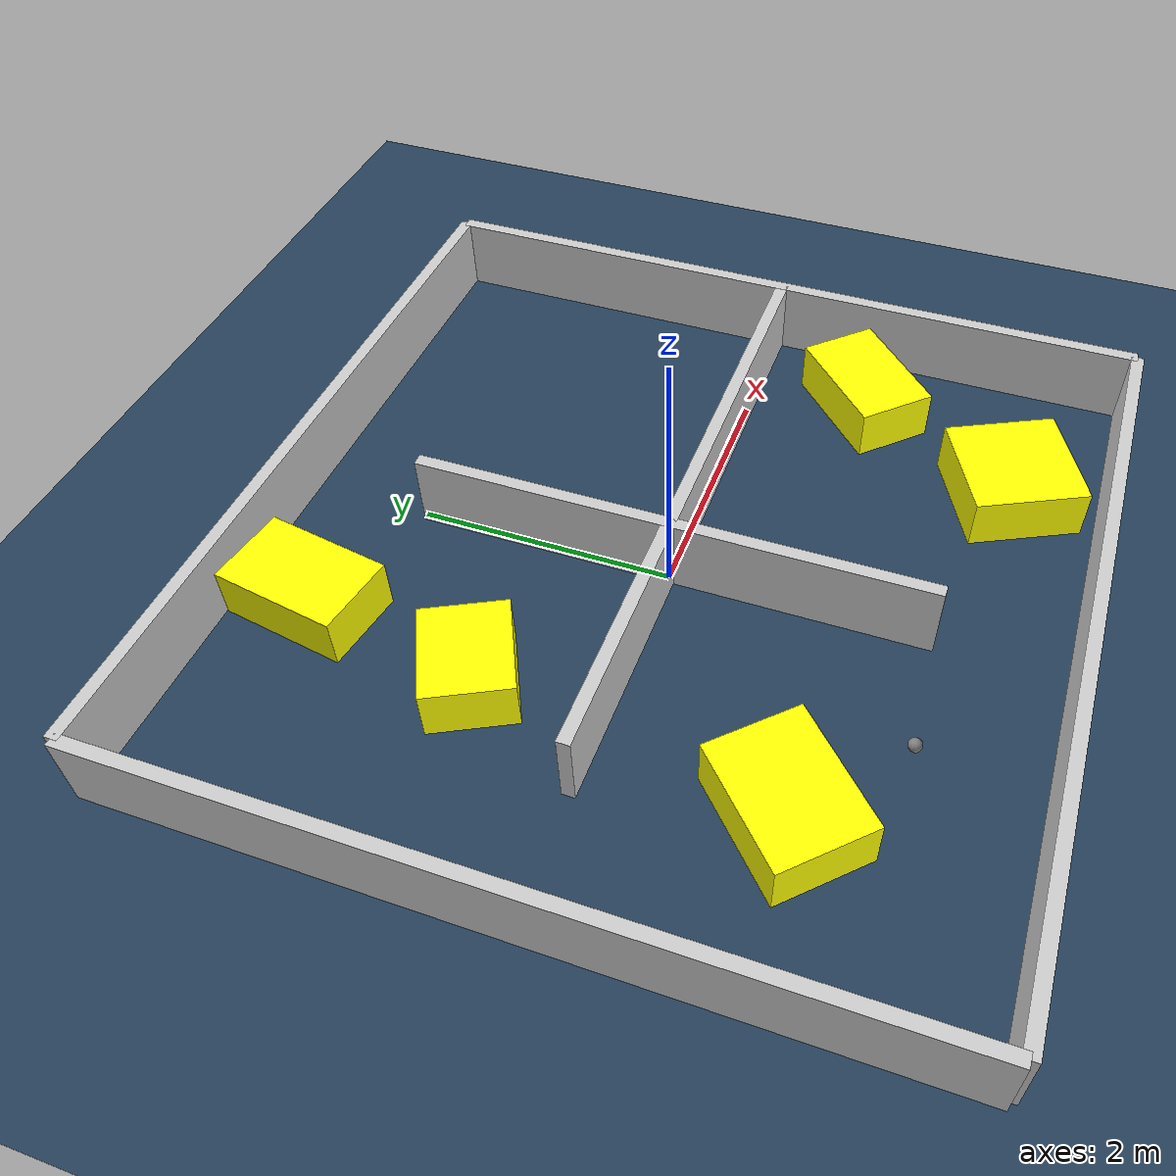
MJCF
<?xml version="1.0" ?>
<mujoco model="generated_environment">
  <option timestep="0.01" integrator="RK4" cone="elliptic"/>
  <default>
    <geom density="1"/>
  </default>
  <asset>
    <texture builtin="gradient" height="3072" rgb1="0.3 0.5 0.7" rgb2="0 0 0" type="skybox" width="512"/>
    <texture builtin="checker" height="300" mark="edge" markrgb="0.8 0.8 0.8" name="groundplane" rgb1="0.2 0.3 0.4" rgb2="0.1 0.2 0.3" type="2d" width="300"/>
    <material name="groundplane" reflectance="0.2" texrepeat="5 5" texture="groundplane" texuniform="true"/>
    <material name="robot" rgba="0.0 1.0 0.0 1"/>
  </asset>
  <worldbody>
    <light dir="0 0 -1" directional="true" pos="0 0 1.5"/>
    <geom condim="4" friction="1.0 0.005 0.001" material="groundplane" name="floor" size="0 0 0.05" type="plane"/>
    <body name="walls">
      <geom name="wall_1" condim="4" pos="-3.0 0.0 0.3" rgba="0.800000011920929 0.800000011920929 0.800000011920929 1.0" size="0.05 3.0 0.3" type="box"/>
      <geom name="wall_2" condim="4" pos="3.0 0.0 0.3" rgba="0.800000011920929 0.800000011920929 0.800000011920929 1.0" size="0.05 3.0 0.3" type="box"/>
      <geom name="wall_3" condim="4" pos="0.0 -3.0 0.3" rgba="0.800000011920929 0.800000011920929 0.800000011920929 1.0" size="3.0 0.05 0.3" type="box"/>
      <geom name="wall_4" condim="4" pos="0.0 3.0 0.3" rgba="0.800000011920929 0.800000011920929 0.800000011920929 1.0" size="3.0 0.05 0.3" type="box"/>
      <geom name="wall_5" condim="4" pos="1.5 0.0 0.3" rgba="0.800000011920929 0.800000011920929 0.800000011920929 1.0" size="1.5 0.05 0.3" type="box"/>
      <geom name="wall_6" condim="4" pos="-1.0 0.0 0.3" rgba="0.800000011920929 0.800000011920929 0.800000011920929 1.0" size="1.0 0.05 0.3" type="box"/>
      <geom name="wall_7" condim="4" pos="0.0 -1.0 0.3" rgba="0.800000011920929 0.800000011920929 0.800000011920929 1.0" size="0.05 1.0 0.3" type="box"/>
      <geom name="wall_8" condim="4" pos="0.0 1.0 0.3" rgba="0.800000011920929 0.800000011920929 0.800000011920929 1.0" size="0.05 1.0 0.3" type="box"/>
    </body>
    <body name="robot">
      <joint name="joint_x" type="slide" pos="0 0 0" axis="1 0 0"/>
      <joint name="joint_y" type="slide" pos="0 0 0" axis="0 1 0"/>
      <geom name="robot" type="sphere" pos="-1.0147642243473913 -2.0477134972374462 0.2" size="0.05" mass="5." friction="1.0 0.005 0.0001" condim="4"/>
      <site name="sensor_ball"/>
    </body>
    <body name="obstacle_1_movable">
      <geom name="obstacle_1_movable" condim="4" pos="-1.378784121861146 0.9801559060108391 0.2" euler="0 0 116.89289905555728" friction="1.0 0.005 0.001" rgba="1 1 0 1" size="0.3277090294649272 0.38682225664131104 0.2" type="box" mass="0.1"/>
      <joint type="free"/>
    </body>
    <body name="obstacle_2_movable">
      <geom name="obstacle_2_movable" condim="4" pos="-1.7014908117490848 -1.3755259020980968 0.2" euler="0 0 224.13335121918132" friction="1.0 0.005 0.001" rgba="1 1 0 1" size="0.5020442491724112 0.3749566040248742 0.2" type="box" mass="0.1"/>
      <joint type="free"/>
    </body>
    <body name="obstacle_3_movable">
      <geom name="obstacle_3_movable" condim="4" pos="2.3522854858648303 -0.9241459725121697 0.2" euler="0 0 133.5247818726525" friction="1.0 0.005 0.001" rgba="1 1 0 1" size="0.315879536914721 0.4904141917594932 0.2" type="box" mass="0.1"/>
      <joint type="free"/>
    </body>
    <body name="obstacle_4_movable">
      <geom name="obstacle_4_movable" condim="4" pos="1.6739373839711407 -2.2578947820774085 0.2" euler="0 0 26.20905962424358" friction="1.0 0.005 0.001" rgba="1 1 0 1" size="0.443279582948111 0.4453501341226117 0.2" type="box" mass="0.1"/>
      <joint type="free"/>
    </body>
    <body name="obstacle_5_movable">
      <geom name="obstacle_5_movable" condim="4" pos="-1.1264473988133268 2.393618031566296 0.2" euler="0 0 350.7289818987138" friction="1.0 0.005 0.001" rgba="1 1 0 1" size="0.3234168265112832 0.5027647474639919 0.2" type="box" mass="0.1"/>
      <joint type="free"/>
    </body>
  </worldbody>
  <actuator>
    <motor name="actuator_x" joint="joint_x" gear="1" ctrlrange="-1 1"/>
    <motor name="actuator_y" joint="joint_y" gear="1" ctrlrange="-1 1"/>
  </actuator>
</mujoco>
